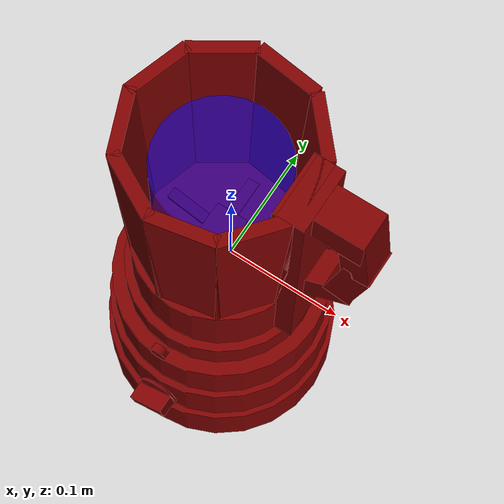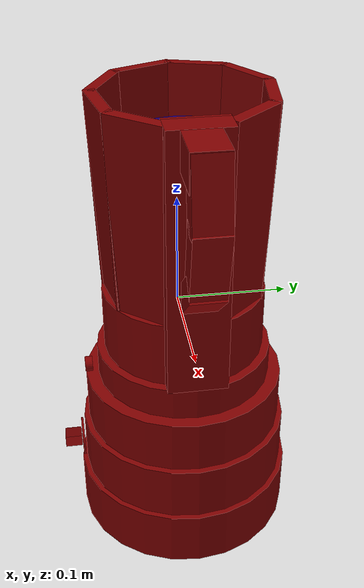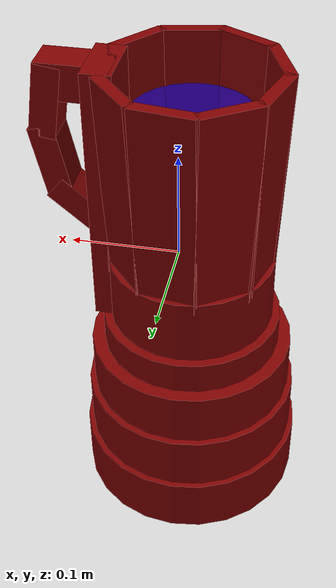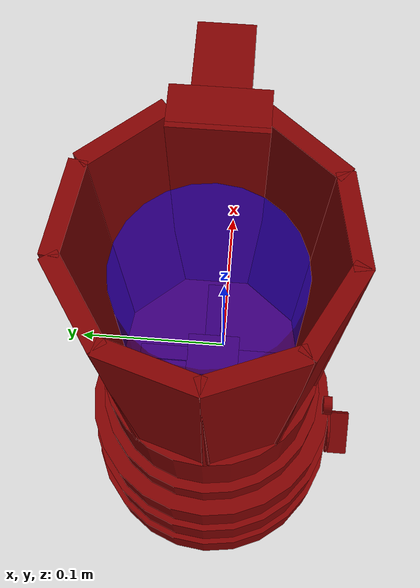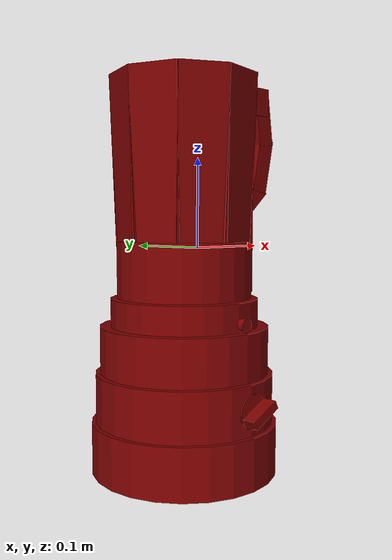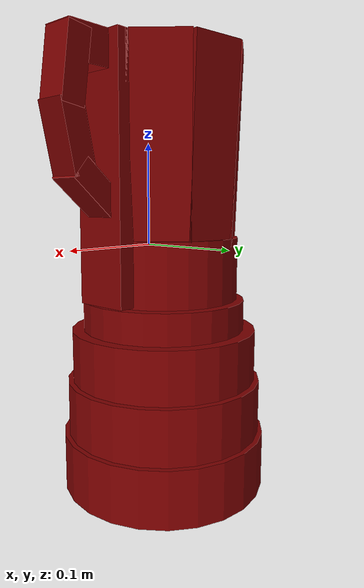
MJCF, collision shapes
<?xml version='1.0' encoding='UTF-8'?>
<mujoco model="model">
  <option timestep="0.002" gravity="0.0 0.0 -9.81"/>
  <compiler angle="radian"/>
  <asset>
    <mesh file="visuals/blade.obj" name="blade_vis"/>
    <mesh file="visuals/Body001.obj" name="Body001_vis"/>
    <mesh file="visuals/power_button.obj" name="power_button_vis"/>
    <mesh file="visuals/pitcher.obj" name="pitcher_vis"/>
    <mesh file="visuals/pitcher_main.obj" name="pitcher_main_vis"/>
    <mesh file="visuals/knob_speed.obj" name="knob_speed_vis"/>
    <texture file="visuals/T_BC001.png" name="Body001_material" type="2d"/>
    <material name="Body001_material" rgba="1 1 1 1.0" texture="Body001_material" shininess="0.4472135901451111" specular="1"/>
    <texture file="visuals/T_BC001.png" name="power_button_material" type="2d"/>
    <material name="power_button_material" rgba="1 1 1 1.0" texture="power_button_material" shininess="0.4472135901451111" specular="1"/>
    <texture file="visuals/T_BC001.png" name="pitcher_material" type="2d"/>
    <material name="pitcher_material" rgba="1 1 1 1.0" texture="pitcher_material" shininess="0.4472135901451111" specular="1"/>
    <texture file="visuals/T_BC001.png" name="blade_material" type="2d"/>
    <material name="blade_material" rgba="1 1 1 1.0" texture="blade_material" shininess="0.4472135901451111" specular="1"/>
    <texture file="visuals/T_BC001.png" name="pitcher_main_material" type="2d"/>
    <material name="pitcher_main_material" rgba="1 1 1 0.800000011920929" texture="pitcher_main_material" shininess="0.4472135901451111" specular="0.3103448502657381"/>
    <texture file="visuals/T_BC001.png" name="knob_speed_material" type="2d"/>
    <material name="knob_speed_material" rgba="1 1 1 1.0" texture="knob_speed_material" shininess="0.4472135901451111" specular="1"/>
  </asset>
  <default>
    <default class="visual">
      <geom conaffinity="0" contype="0" group="1" type="mesh"/>
    </default>
    <default class="collision">
      <geom group="0" rgba="0.5 0 0 0.5" density="1.0" solref="0.004 1" solimp="0.998 0.998 0.001"/>
    </default>
    <default class="spawn">
      <geom group="0" rgba="1 1 1 0.5" contype="0" conaffinity="0"/>
      <site group="0" rgba="1 1 1 0.5"/>
    </default>
    <default class="region">
      <geom group="1" conaffinity="0" contype="0" rgba="0 1 0 0" mass="0"/>
    </default>
  </default>
  <worldbody>
    <body>
      <body name="object">
        <geom mesh="Body001_vis" type="mesh" solimp="0.998 0.998 0.001" solref="0.001 1" friction="0.95 0.3 0.1" class="visual" material="Body001_material"/>
        <geom type="cylinder" pos="-0.01387144 0.00759112 -0.22227697" size="0.10469318181276321 0.028516290709376335" quat="1.0 0.0 0.0 0.0" class="collision"/>
        <geom type="cylinder" pos="-0.01387144 0.00759112 -0.16607638" size="0.10001954436302185 0.02724328637123108" quat="1.0 0.0 0.0 0.0" class="collision"/>
        <geom type="cylinder" pos="-0.01387144 0.00759112 -0.11230748" size="0.09488319605588913 0.02584424987435341" quat="1.0 0.0 0.0 0.0" class="collision"/>
        <geom type="cylinder" pos="-0.01387144 0.00759112 -0.07100878" size="0.08281132578849792 0.015388729982078075" quat="1.0 0.0 0.0 0.0" class="collision"/>
        <body name="power_button">
          <joint axis="0.0 1.0 0.0" pos="-0.01595779 -0.08291703 -0.07724272" limited="true" name="power_button_joint" range="0.0 0.002" type="slide" damping="1" frictionloss="1" armature=".01" stiffness="0.2" springref="-0.5"/>
          <geom mesh="power_button_vis" type="mesh" solimp="0.998 0.998 0.001" solref="0.001 1" friction="0.95 0.3 0.1" class="visual" material="power_button_material"/>
          <geom class="collision" type="cylinder" pos="-0.01595779 -0.08434111 -0.07724272" size="0.007227575872093439 0.00347500410862267" quat="0.7071068286895752 0.7071067690849304 0.0 0.0" name="power_button_main"/>
        </body>
        <body name="pitcher">
          <geom mesh="pitcher_vis" type="mesh" solimp="0.998 0.998 0.001" solref="0.001 1" friction="0.95 0.3 0.1" class="visual" material="pitcher_material"/>
          <geom type="cylinder" pos="-0.01387144 0.00759112 -0.02343743" size="0.0755901038646698 0.031190989539027214" quat="1.0 0.0 0.0 0.0" class="collision"/>
          <geom type="box" pos="0.06034970 0.00758336 0.06784143" size="0.011583236046135426 0.027263129130005836 0.12090808898210526" quat="1.0 0.0 0.0 0.0" class="collision"/>
          <geom class="collision" type="box" pos="0.09159835 0.00748012 0.17227817" size="0.021328119561076164 0.015841878950595856 0.01625138334929943" quat="1.0 0.0 0.0 0.0" name="pitcher_handle_3"/>
          <geom class="collision" type="box" pos="0.10630482 0.00791430 0.15362938" size="0.03252037614583969 0.01542231347411871 0.011712320148944855" quat="0.7547217607498169 0.0 0.6560450196266174 0.0" name="pitcher_handle_2"/>
          <geom class="collision" type="box" pos="0.10537517 0.00791430 0.09766448" size="0.03252037614583969 0.01542231161147356 0.011712320148944855" quat="0.6293348073959351 0.0 0.7771342992782593 0.0" name="pitcher_handle_1"/>
          <geom class="collision" type="box" pos="0.08100685 0.00791430 0.05260452" size="0.030332840979099274 0.01542231161147356 0.01171231921762228" quat="0.34662744402885437 0.0 0.93800288438797 0.0" name="pitcher_handle_0"/>
          <body name="blade">
            <geom mesh="blade_vis" type="mesh" solimp="0.998 0.998 0.001" solref="0.001 1" friction="0.95 0.3 0.1" class="visual" material="blade_material"/>
            <geom type="box" pos="-0.01365844 0.00634319 0.01533413" size="0.014491913840174675 0.017638348042964935 0.0007777351420372725" quat="1.0 0.0 0.0 0.0" class="collision"/>
            <geom type="box" pos="-0.01384328 0.03973202 0.01533413" size="0.0050698015838861465 0.016161534935235977 0.0007777351420372725" quat="1.0 0.0 0.0 0.0" class="collision"/>
            <geom type="box" pos="-0.01384328 -0.02448858 0.01533413" size="0.0050698015838861465 0.016161534935235977 0.0007777351420372725" quat="1.0 0.0 0.0 0.0" class="collision"/>
            <geom type="box" pos="-0.04553313 0.00760271 0.02032603" size="0.0050698015838861465 0.01778339222073555 0.0007777351420372725" quat="0.6976118087768555 -0.11548939347267151 0.1154894009232521 -0.6976117491722107" class="collision"/>
            <geom type="box" pos="0.01769215 0.00760271 0.02042771" size="0.0050698015838861465 0.01746790111064911 0.0007777351420372725" quat="0.6976118087768555 -0.11548939347267151 -0.1154894009232521 0.6976117491722107" class="collision"/>
          </body>
          <body name="pitcher_main">
            <geom class="region" type="cylinder" size="0.05459639057517052 0.06547840684652328" pos="-0.01375501 0.00755227 0.08109854" rgba="0 0 1 0.5" name="reg_int"/>
            <geom mesh="pitcher_main_vis" type="mesh" solimp="0.998 0.998 0.001" solref="0.001 1" friction="0.95 0.3 0.1" class="visual" material="pitcher_main_material"/>
            <geom type="box" pos="0.05442135 0.00758336 0.09247573" size="0.008866118267178535 0.027263129130005836 0.0962737575173378" quat="1.0 0.0 0.0 0.0" class="collision"/>
            <geom type="box" pos="0.03891332 -0.03551471 0.09247573" size="0.005154433660209179 0.027263129130005836 0.09614638984203339" quat="0.9419527649879456 0.006479029078036547 0.018207471817731857 -0.33518874645233154" class="collision"/>
            <geom type="box" pos="-0.04634138 -0.05228703 0.09247573" size="0.005154434125870466 0.027263129130005836 0.09614638984203339" quat="0.5137460827827454 0.016579383984208107 0.009930452331900597 -0.8577246069908142" class="collision"/>
            <geom type="box" pos="-0.00107414 -0.05927414 0.09247573" size="0.005154433660209179 0.027263129130005836 0.09614638984203339" quat="0.771568238735199 0.012290717102587223 0.01491402555257082 -0.6358529329299927" class="collision"/>
            <geom type="box" pos="-0.05083842 0.06528205 0.09247573" size="0.005154433660209179 0.027263129130005836 0.09614638984203339" quat="0.4774850010871887 -0.016979556530714035 0.00922954361885786 0.8784273266792297" class="collision"/>
            <geom type="box" pos="-0.00432211 0.07546330 0.09247573" size="0.005154433660209179 0.027263129130005836 0.09614638984203339" quat="0.7537038326263428 -0.01269812323153019 0.014568712562322617 0.6569300293922424" class="collision"/>
            <geom type="box" pos="-0.07905889 0.02830759 0.09247573" size="0.005154433660209179 0.027263129130005836 0.09614638984203339" quat="0.14990121126174927 -0.019107436761260033 0.002897514495998621 0.9885120987892151" class="collision"/>
            <geom type="box" pos="-0.07734878 -0.01746379 0.09247573" size="0.005154433660209179 0.027263129130005836 0.09614638984203339" quat="0.1901738941669464 0.018973061814904213 0.0036759646609425545 -0.9815601706504822" class="collision"/>
            <geom type="box" pos="0.03788485 0.05238785 0.09247573" size="0.005154434125870466 0.027263129130005836 0.09614638984203339" quat="0.9367375373840332 -0.006755633745342493 0.018106667324900627 0.3494986593723297" class="collision"/>
          </body>
        </body>
        <body name="knob_speed">
          <joint axis="0.0 1.0 0.0" pos="-0.01392435 -0.09473100 -0.16594788" limited="true" name="knob_speed_joint" range="0.0 4.014257279586958" type="hinge" damping="0.05" frictionloss="0.1" armature="0.001"/>
          <geom mesh="knob_speed_vis" type="mesh" solimp="0.998 0.998 0.001" solref="0.001 1" friction="0.95 0.3 0.1" class="visual" material="knob_speed_material"/>
          <geom type="cylinder" pos="-0.01396523 -0.09503022 -0.16604793" size="0.018516525626182556 0.0010534262983128428" quat="0.7071068286895752 0.7071067690849304 0.0 0.0" class="collision" density="0.001"/>
          <geom class="collision" type="box" pos="-0.01392435 -0.10493317 -0.16594788" size="0.01824144460260868 0.00815507210791111 0.004754546098411083" quat="0.9741969108581543 1.0069801903875796e-15 -0.2256997674703598 7.725376782730109e-09" name="knob_speed_main" density="0.001"/>
        </body>
        <geom class="region" name="reg_main" type="box" pos="-0.013871435000000001 0.0075911150000000024 0.001150994999999988" size="0.106338895 0.10634711499999999 0.252751275"/>
      </body>
      <site rgba="0 1 0 0" size="0.005" pos="-0.005045485 0.00780499 0.20547592" name="anchor_site"/>
    </body>
  </worldbody>
  <actuator>
    <motor name="power_button_joint_actuator" joint="power_button_joint" gear="0.5"/>
    <motor name="knob_speed_joint_actuator" joint="knob_speed_joint" gear="10"/>
  </actuator>
</mujoco>
